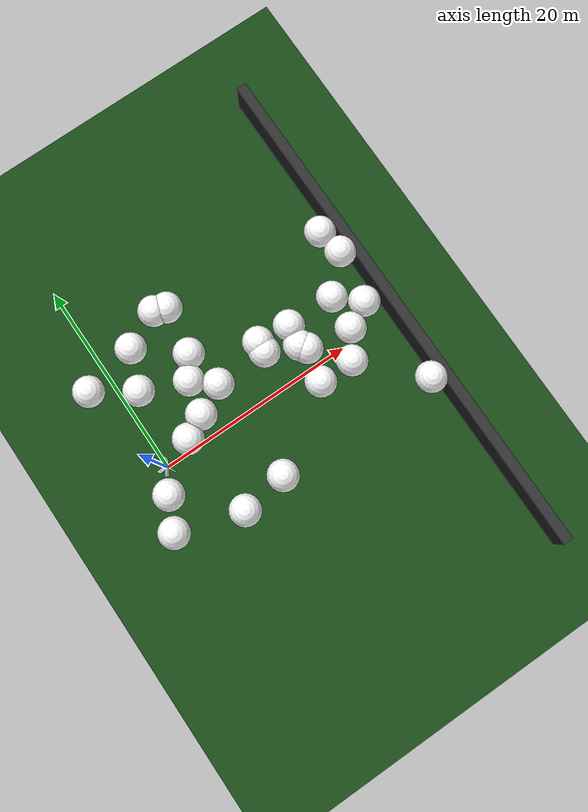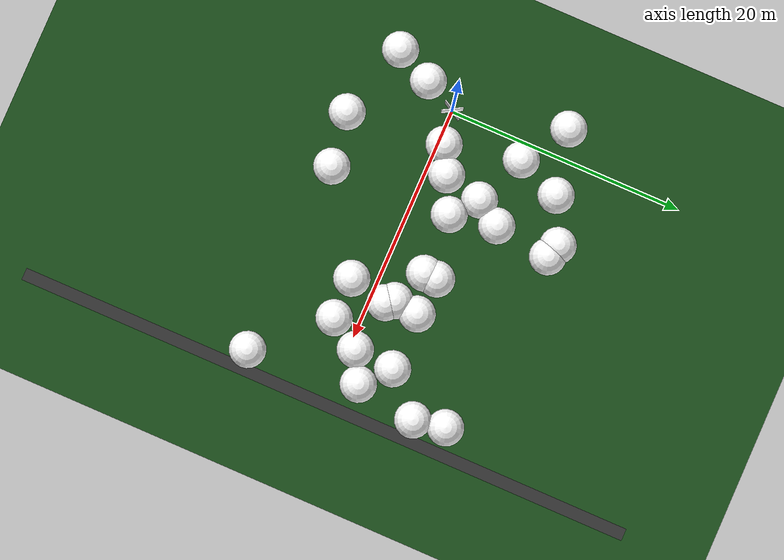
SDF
<sdf version="1.8">
 <world name="forest_world">
  <model name="fire_5">
   <pose>0.00 0.00 1.00 0 0 0.00</pose>
   <static>true</static>
   <link name="fire_link">
    <visual name="fire_5_fire_main_0">
     <geometry><box><size>1.80 0.10 2.00</size></box></geometry>
     <material>
      <ambient>0.7 0.35 0.0 1</ambient>
      <diffuse>1 1 1 1</diffuse>
      <specular>0 0 0 1</specular>
      <emissive>0 0 0 1</emissive>
      <pbr>
       <metal><albedo_map>textures/fire.png</albedo_map><metalness>0.0</metalness><roughness>0.6</roughness></metal>
      </pbr>
     </material>
     <transparency>0.0</transparency>
     <cast_shadows>false</cast_shadows>
    </visual>
    <visual name="fire_5_fire_60_1">
     <pose>0.00 0.00 0.10 0 0 1.05</pose>
     <geometry><box><size>1.80 0.10 2.00</size></box></geometry>
     <material>
      <ambient>0.7 0.35 0.0 1</ambient>
      <diffuse>1 1 1 1</diffuse>
      <specular>0 0 0 1</specular>
      <emissive>0 0 0 1</emissive>
      <pbr>
       <metal><albedo_map>textures/fire.png</albedo_map><metalness>0.0</metalness><roughness>0.6</roughness></metal>
      </pbr>
     </material>
     <transparency>0.0</transparency>
     <cast_shadows>false</cast_shadows>
    </visual>
    <visual name="fire_5_fire_120_2">
     <pose>0.00 0.00 0.20 0 0 2.09</pose>
     <geometry><box><size>1.80 0.10 2.00</size></box></geometry>
     <material>
      <ambient>0.7 0.35 0.0 1</ambient>
      <diffuse>1 1 1 1</diffuse>
      <specular>0 0 0 1</specular>
      <emissive>0 0 0 1</emissive>
      <pbr>
       <metal><albedo_map>textures/fire.png</albedo_map><metalness>0.0</metalness><roughness>0.6</roughness></metal>
      </pbr>
     </material>
     <transparency>0.0</transparency>
     <cast_shadows>false</cast_shadows>
    </visual>
    <light type="point" name="fire_5_light_0">
     <pose>0.40 0.00 0.50 0 0 0</pose>
     <diffuse>1.0 0.7 0.3 1</diffuse>
     <specular>1.0 0.8 0.3 1</specular>
     <intensity>2</intensity>
     <attenuation>
      <range>2</range>
      <constant>0.1</constant>
      <linear>0.05</linear>
      <quadratic>0.02</quadratic>
     </attenuation>
     <cast_shadows>false</cast_shadows>
    </light>
    <light type="point" name="fire_5_light_1">
     <pose>-0.20 0.35 0.50 0 0 0</pose>
     <diffuse>1.0 0.7 0.3 1</diffuse>
     <specular>1.0 0.8 0.3 1</specular>
     <intensity>2</intensity>
     <attenuation>
      <range>2</range>
      <constant>0.1</constant>
      <linear>0.05</linear>
      <quadratic>0.02</quadratic>
     </attenuation>
     <cast_shadows>false</cast_shadows>
    </light>
    <light type="point" name="fire_5_light_2">
     <pose>-0.20 -0.35 0.50 0 0 0</pose>
     <diffuse>1.0 0.7 0.3 1</diffuse>
     <specular>1.0 0.8 0.3 1</specular>
     <intensity>2</intensity>
     <attenuation>
      <range>2</range>
      <constant>0.1</constant>
      <linear>0.05</linear>
      <quadratic>0.02</quadratic>
     </attenuation>
     <cast_shadows>false</cast_shadows>
    </light>
   </link>
   <plugin filename="libignition-gazebo-pose-publisher-system.so" name="ignition::gazebo::systems::PosePublisher">
    <frame_id>world</frame_id>
    <publish_link_pose>true</publish_link_pose>
    <use_pose_vector_msg>true</use_pose_vector_msg>
    <static_publisher>true</static_publisher>
    <static_update_frequency>1</static_update_frequency>
   </plugin>
  </model>
  <model name="tree_simple495">
   <static>1</static>
   <link name="link">
    <pose>0 0 0.1 0 -0 0</pose>
    <collision name="collision_trunk">
     <pose>0 0 2 0 -0 0</pose>
     <geometry><cylinder><radius>0.25</radius><length>4</length></cylinder></geometry>
    </collision>
    <collision name="collision_treetop">
     <pose>0 0 5.2 0 -0 0</pose>
     <geometry><sphere><radius>1.5</radius></sphere></geometry>
    </collision>
    <visual name="trunk">
     <pose>0 0 2 0 -0 0</pose>
     <geometry><cylinder><radius>0.25</radius><length>4</length></cylinder></geometry>
     <material>
      <ambient>0.5 0.5 0.5 1</ambient>
      <diffuse>1.0 1.0 1.0 1</diffuse>
      <specular>0.0 0.0 0.0 1</specular>
      <pbr>
       <metal>
        <albedo_map>../worlds/textures/tree_simple_trunk.jpg</albedo_map>
        <metalness>0.0</metalness>
        <roughness>0.8</roughness>
       </metal>
      </pbr>
     </material>
    </visual>
    <visual name="treetop">
     <pose>0 0 5.2 0 -0 0</pose>
     <geometry><sphere><radius>1.5</radius></sphere></geometry>
     <material>
      <ambient>0.5 0.5 0.5 1</ambient>
      <diffuse>1.0 1.0 1.0 1</diffuse>
      <specular>0.0 0.0 0.0 1</specular>
      <pbr>
       <metal>
        <albedo_map>../worlds/textures/tree_simple_treetop.jpg</albedo_map>
        <metalness>0.0</metalness>
        <roughness>0.9</roughness>
       </metal>
      </pbr>
     </material>
    </visual>
   </link>
   <pose>13.2663357304 3.23501246435 0 0 -0 0</pose>
  </model>
  <model name="tree_simple486">
   <static>1</static>
   <link name="link">
    <pose>0 0 0.1 0 -0 0</pose>
    <collision name="collision_trunk">
     <pose>0 0 2 0 -0 0</pose>
     <geometry><cylinder><radius>0.25</radius><length>4</length></cylinder></geometry>
    </collision>
    <collision name="collision_treetop">
     <pose>0 0 5.2 0 -0 0</pose>
     <geometry><sphere><radius>1.5</radius></sphere></geometry>
    </collision>
    <visual name="trunk">
     <pose>0 0 2 0 -0 0</pose>
     <geometry><cylinder><radius>0.25</radius><length>4</length></cylinder></geometry>
     <material>
      <ambient>0.5 0.5 0.5 1</ambient>
      <diffuse>1.0 1.0 1.0 1</diffuse>
      <specular>0.0 0.0 0.0 1</specular>
      <pbr>
       <metal>
        <albedo_map>../worlds/textures/tree_simple_trunk.jpg</albedo_map>
        <metalness>0.0</metalness>
        <roughness>0.8</roughness>
       </metal>
      </pbr>
     </material>
    </visual>
    <visual name="treetop">
     <pose>0 0 5.2 0 -0 0</pose>
     <geometry><sphere><radius>1.5</radius></sphere></geometry>
     <material>
      <ambient>0.5 0.5 0.5 1</ambient>
      <diffuse>1.0 1.0 1.0 1</diffuse>
      <specular>0.0 0.0 0.0 1</specular>
      <pbr>
       <metal>
        <albedo_map>../worlds/textures/tree_simple_treetop.jpg</albedo_map>
        <metalness>0.0</metalness>
        <roughness>0.9</roughness>
       </metal>
      </pbr>
     </material>
    </visual>
   </link>
   <pose>8.18281559396 11.6524151823 0 0 -0 0</pose>
  </model>
  <model name="tree_simple432">
   <static>1</static>
   <link name="link">
    <pose>0 0 0.1 0 -0 0</pose>
    <collision name="collision_trunk">
     <pose>0 0 2 0 -0 0</pose>
     <geometry><cylinder><radius>0.25</radius><length>4</length></cylinder></geometry>
    </collision>
    <collision name="collision_treetop">
     <pose>0 0 5.2 0 -0 0</pose>
     <geometry><sphere><radius>1.5</radius></sphere></geometry>
    </collision>
    <visual name="trunk">
     <pose>0 0 2 0 -0 0</pose>
     <geometry><cylinder><radius>0.25</radius><length>4</length></cylinder></geometry>
     <material>
      <ambient>0.5 0.5 0.5 1</ambient>
      <diffuse>1.0 1.0 1.0 1</diffuse>
      <specular>0.0 0.0 0.0 1</specular>
      <pbr>
       <metal>
        <albedo_map>../worlds/textures/tree_simple_trunk.jpg</albedo_map>
        <metalness>0.0</metalness>
        <roughness>0.8</roughness>
       </metal>
      </pbr>
     </material>
    </visual>
    <visual name="treetop">
     <pose>0 0 5.2 0 -0 0</pose>
     <geometry><sphere><radius>1.5</radius></sphere></geometry>
     <material>
      <ambient>0.5 0.5 0.5 1</ambient>
      <diffuse>1.0 1.0 1.0 1</diffuse>
      <specular>0.0 0.0 0.0 1</specular>
      <pbr>
       <metal>
        <albedo_map>../worlds/textures/tree_simple_treetop.jpg</albedo_map>
        <metalness>0.0</metalness>
        <roughness>0.9</roughness>
       </metal>
      </pbr>
     </material>
    </visual>
   </link>
   <pose>8.39657738542 -6.88848549894 0 0 -0 0</pose>
  </model>
  <model name="tree_simple431">
   <static>1</static>
   <link name="link">
    <pose>0 0 0.1 0 -0 0</pose>
    <collision name="collision_trunk">
     <pose>0 0 2 0 -0 0</pose>
     <geometry><cylinder><radius>0.25</radius><length>4</length></cylinder></geometry>
    </collision>
    <collision name="collision_treetop">
     <pose>0 0 5.2 0 -0 0</pose>
     <geometry><sphere><radius>1.5</radius></sphere></geometry>
    </collision>
    <visual name="trunk">
     <pose>0 0 2 0 -0 0</pose>
     <geometry><cylinder><radius>0.25</radius><length>4</length></cylinder></geometry>
     <material>
      <ambient>0.5 0.5 0.5 1</ambient>
      <diffuse>1.0 1.0 1.0 1</diffuse>
      <specular>0.0 0.0 0.0 1</specular>
      <pbr>
       <metal>
        <albedo_map>../worlds/textures/tree_simple_trunk.jpg</albedo_map>
        <metalness>0.0</metalness>
        <roughness>0.8</roughness>
       </metal>
      </pbr>
     </material>
    </visual>
    <visual name="treetop">
     <pose>0 0 5.2 0 -0 0</pose>
     <geometry><sphere><radius>1.5</radius></sphere></geometry>
     <material>
      <ambient>0.5 0.5 0.5 1</ambient>
      <diffuse>1.0 1.0 1.0 1</diffuse>
      <specular>0.0 0.0 0.0 1</specular>
      <pbr>
       <metal>
        <albedo_map>../worlds/textures/tree_simple_treetop.jpg</albedo_map>
        <metalness>0.0</metalness>
        <roughness>0.9</roughness>
       </metal>
      </pbr>
     </material>
    </visual>
   </link>
   <pose>21.2091972338 3.93897030512 0 0 -0 0</pose>
  </model>
  <model name="tree_simple421">
   <static>1</static>
   <link name="link">
    <pose>0 0 0.1 0 -0 0</pose>
    <collision name="collision_trunk">
     <pose>0 0 2 0 -0 0</pose>
     <geometry><cylinder><radius>0.25</radius><length>4</length></cylinder></geometry>
    </collision>
    <collision name="collision_treetop">
     <pose>0 0 5.2 0 -0 0</pose>
     <geometry><sphere><radius>1.5</radius></sphere></geometry>
    </collision>
    <visual name="trunk">
     <pose>0 0 2 0 -0 0</pose>
     <geometry><cylinder><radius>0.25</radius><length>4</length></cylinder></geometry>
     <material>
      <ambient>0.5 0.5 0.5 1</ambient>
      <diffuse>1.0 1.0 1.0 1</diffuse>
      <specular>0.0 0.0 0.0 1</specular>
      <pbr>
       <metal>
        <albedo_map>../worlds/textures/tree_simple_trunk.jpg</albedo_map>
        <metalness>0.0</metalness>
        <roughness>0.8</roughness>
       </metal>
      </pbr>
     </material>
    </visual>
    <visual name="treetop">
     <pose>0 0 5.2 0 -0 0</pose>
     <geometry><sphere><radius>1.5</radius></sphere></geometry>
     <material>
      <ambient>0.5 0.5 0.5 1</ambient>
      <diffuse>1.0 1.0 1.0 1</diffuse>
      <specular>0.0 0.0 0.0 1</specular>
      <pbr>
       <metal>
        <albedo_map>../worlds/textures/tree_simple_treetop.jpg</albedo_map>
        <metalness>0.0</metalness>
        <roughness>0.9</roughness>
       </metal>
      </pbr>
     </material>
    </visual>
   </link>
   <pose>7.02492588621 12.0559728025 0 0 -0 0</pose>
  </model>
  <model name="tree_simple417">
   <static>1</static>
   <link name="link">
    <pose>0 0 0.1 0 -0 0</pose>
    <collision name="collision_trunk">
     <pose>0 0 2 0 -0 0</pose>
     <geometry><cylinder><radius>0.25</radius><length>4</length></cylinder></geometry>
    </collision>
    <collision name="collision_treetop">
     <pose>0 0 5.2 0 -0 0</pose>
     <geometry><sphere><radius>1.5</radius></sphere></geometry>
    </collision>
    <visual name="trunk">
     <pose>0 0 2 0 -0 0</pose>
     <geometry><cylinder><radius>0.25</radius><length>4</length></cylinder></geometry>
     <material>
      <ambient>0.5 0.5 0.5 1</ambient>
      <diffuse>1.0 1.0 1.0 1</diffuse>
      <specular>0.0 0.0 0.0 1</specular>
      <pbr>
       <metal>
        <albedo_map>../worlds/textures/tree_simple_trunk.jpg</albedo_map>
        <metalness>0.0</metalness>
        <roughness>0.8</roughness>
       </metal>
      </pbr>
     </material>
    </visual>
    <visual name="treetop">
     <pose>0 0 5.2 0 -0 0</pose>
     <geometry><sphere><radius>1.5</radius></sphere></geometry>
     <material>
      <ambient>0.5 0.5 0.5 1</ambient>
      <diffuse>1.0 1.0 1.0 1</diffuse>
      <specular>0.0 0.0 0.0 1</specular>
      <pbr>
       <metal>
        <albedo_map>../worlds/textures/tree_simple_treetop.jpg</albedo_map>
        <metalness>0.0</metalness>
        <roughness>0.9</roughness>
       </metal>
      </pbr>
     </material>
    </visual>
   </link>
   <pose>-1.82310579314 9.17527441854 0 0 -0 0</pose>
  </model>
  <model name="tree_simple412">
   <static>1</static>
   <link name="link">
    <pose>0 0 0.1 0 -0 0</pose>
    <collision name="collision_trunk">
     <pose>0 0 2 0 -0 0</pose>
     <geometry><cylinder><radius>0.25</radius><length>4</length></cylinder></geometry>
    </collision>
    <collision name="collision_treetop">
     <pose>0 0 5.2 0 -0 0</pose>
     <geometry><sphere><radius>1.5</radius></sphere></geometry>
    </collision>
    <visual name="trunk">
     <pose>0 0 2 0 -0 0</pose>
     <geometry><cylinder><radius>0.25</radius><length>4</length></cylinder></geometry>
     <material>
      <ambient>0.5 0.5 0.5 1</ambient>
      <diffuse>1.0 1.0 1.0 1</diffuse>
      <specular>0.0 0.0 0.0 1</specular>
      <pbr>
       <metal>
        <albedo_map>../worlds/textures/tree_simple_trunk.jpg</albedo_map>
        <metalness>0.0</metalness>
        <roughness>0.8</roughness>
       </metal>
      </pbr>
     </material>
    </visual>
    <visual name="treetop">
     <pose>0 0 5.2 0 -0 0</pose>
     <geometry><sphere><radius>1.5</radius></sphere></geometry>
     <material>
      <ambient>0.5 0.5 0.5 1</ambient>
      <diffuse>1.0 1.0 1.0 1</diffuse>
      <specular>0.0 0.0 0.0 1</specular>
      <pbr>
       <metal>
        <albedo_map>../worlds/textures/tree_simple_treetop.jpg</albedo_map>
        <metalness>0.0</metalness>
        <roughness>0.9</roughness>
       </metal>
      </pbr>
     </material>
    </visual>
   </link>
   <pose>1.94235434688 6.68973059551 0 0 -0 0</pose>
  </model>
  <model name="tree_simple350">
   <static>1</static>
   <link name="link">
    <pose>0 0 0.1 0 -0 0</pose>
    <collision name="collision_trunk">
     <pose>0 0 2 0 -0 0</pose>
     <geometry><cylinder><radius>0.25</radius><length>4</length></cylinder></geometry>
    </collision>
    <collision name="collision_treetop">
     <pose>0 0 5.2 0 -0 0</pose>
     <geometry><sphere><radius>1.5</radius></sphere></geometry>
    </collision>
    <visual name="trunk">
     <pose>0 0 2 0 -0 0</pose>
     <geometry><cylinder><radius>0.25</radius><length>4</length></cylinder></geometry>
     <material>
      <ambient>0.5 0.5 0.5 1</ambient>
      <diffuse>1.0 1.0 1.0 1</diffuse>
      <specular>0.0 0.0 0.0 1</specular>
      <pbr>
       <metal>
        <albedo_map>../worlds/textures/tree_simple_trunk.jpg</albedo_map>
        <metalness>0.0</metalness>
        <roughness>0.8</roughness>
       </metal>
      </pbr>
     </material>
    </visual>
    <visual name="treetop">
     <pose>0 0 5.2 0 -0 0</pose>
     <geometry><sphere><radius>1.5</radius></sphere></geometry>
     <material>
      <ambient>0.5 0.5 0.5 1</ambient>
      <diffuse>1.0 1.0 1.0 1</diffuse>
      <specular>0.0 0.0 0.0 1</specular>
      <pbr>
       <metal>
        <albedo_map>../worlds/textures/tree_simple_treetop.jpg</albedo_map>
        <metalness>0.0</metalness>
        <roughness>0.9</roughness>
       </metal>
      </pbr>
     </material>
    </visual>
   </link>
   <pose>5.40258361507 1.7380066323 0 0 -0 0</pose>
  </model>
  <model name="tree_simple346">
   <static>1</static>
   <link name="link">
    <pose>0 0 0.1 0 -0 0</pose>
    <collision name="collision_trunk">
     <pose>0 0 2 0 -0 0</pose>
     <geometry><cylinder><radius>0.25</radius><length>4</length></cylinder></geometry>
    </collision>
    <collision name="collision_treetop">
     <pose>0 0 5.2 0 -0 0</pose>
     <geometry><sphere><radius>1.5</radius></sphere></geometry>
    </collision>
    <visual name="trunk">
     <pose>0 0 2 0 -0 0</pose>
     <geometry><cylinder><radius>0.25</radius><length>4</length></cylinder></geometry>
     <material>
      <ambient>0.5 0.5 0.5 1</ambient>
      <diffuse>1.0 1.0 1.0 1</diffuse>
      <specular>0.0 0.0 0.0 1</specular>
      <pbr>
       <metal>
        <albedo_map>../worlds/textures/tree_simple_trunk.jpg</albedo_map>
        <metalness>0.0</metalness>
        <roughness>0.8</roughness>
       </metal>
      </pbr>
     </material>
    </visual>
    <visual name="treetop">
     <pose>0 0 5.2 0 -0 0</pose>
     <geometry><sphere><radius>1.5</radius></sphere></geometry>
     <material>
      <ambient>0.5 0.5 0.5 1</ambient>
      <diffuse>1.0 1.0 1.0 1</diffuse>
      <specular>0.0 0.0 0.0 1</specular>
      <pbr>
       <metal>
        <albedo_map>../worlds/textures/tree_simple_treetop.jpg</albedo_map>
        <metalness>0.0</metalness>
        <roughness>0.9</roughness>
       </metal>
      </pbr>
     </material>
    </visual>
   </link>
   <pose>6.18558583868 4.91340003373 0 0 -0 0</pose>
  </model>
  <model name="tree_simple316">
   <static>1</static>
   <link name="link">
    <pose>0 0 0.1 0 -0 0</pose>
    <collision name="collision_trunk">
     <pose>0 0 2 0 -0 0</pose>
     <geometry><cylinder><radius>0.25</radius><length>4</length></cylinder></geometry>
    </collision>
    <collision name="collision_treetop">
     <pose>0 0 5.2 0 -0 0</pose>
     <geometry><sphere><radius>1.5</radius></sphere></geometry>
    </collision>
    <visual name="trunk">
     <pose>0 0 2 0 -0 0</pose>
     <geometry><cylinder><radius>0.25</radius><length>4</length></cylinder></geometry>
     <material>
      <ambient>0.5 0.5 0.5 1</ambient>
      <diffuse>1.0 1.0 1.0 1</diffuse>
      <specular>0.0 0.0 0.0 1</specular>
      <pbr>
       <metal>
        <albedo_map>../worlds/textures/tree_simple_trunk.jpg</albedo_map>
        <metalness>0.0</metalness>
        <roughness>0.8</roughness>
       </metal>
      </pbr>
     </material>
    </visual>
    <visual name="treetop">
     <pose>0 0 5.2 0 -0 0</pose>
     <geometry><sphere><radius>1.5</radius></sphere></geometry>
     <material>
      <ambient>0.5 0.5 0.5 1</ambient>
      <diffuse>1.0 1.0 1.0 1</diffuse>
      <specular>0.0 0.0 0.0 1</specular>
      <pbr>
       <metal>
        <albedo_map>../worlds/textures/tree_simple_treetop.jpg</albedo_map>
        <metalness>0.0</metalness>
        <roughness>0.9</roughness>
       </metal>
      </pbr>
     </material>
    </visual>
   </link>
   <pose>19.3529599153 -1.91242662106 0 0 -0 0</pose>
  </model>
  <model name="tree_simple315">
   <static>1</static>
   <link name="link">
    <pose>0 0 0.1 0 -0 0</pose>
    <collision name="collision_trunk">
     <pose>0 0 2 0 -0 0</pose>
     <geometry><cylinder><radius>0.25</radius><length>4</length></cylinder></geometry>
    </collision>
    <collision name="collision_treetop">
     <pose>0 0 5.2 0 -0 0</pose>
     <geometry><sphere><radius>1.5</radius></sphere></geometry>
    </collision>
    <visual name="trunk">
     <pose>0 0 2 0 -0 0</pose>
     <geometry><cylinder><radius>0.25</radius><length>4</length></cylinder></geometry>
     <material>
      <ambient>0.5 0.5 0.5 1</ambient>
      <diffuse>1.0 1.0 1.0 1</diffuse>
      <specular>0.0 0.0 0.0 1</specular>
      <pbr>
       <metal>
        <albedo_map>../worlds/textures/tree_simple_trunk.jpg</albedo_map>
        <metalness>0.0</metalness>
        <roughness>0.8</roughness>
       </metal>
      </pbr>
     </material>
    </visual>
    <visual name="treetop">
     <pose>0 0 5.2 0 -0 0</pose>
     <geometry><sphere><radius>1.5</radius></sphere></geometry>
     <material>
      <ambient>0.5 0.5 0.5 1</ambient>
      <diffuse>1.0 1.0 1.0 1</diffuse>
      <specular>0.0 0.0 0.0 1</specular>
      <pbr>
       <metal>
        <albedo_map>../worlds/textures/tree_simple_treetop.jpg</albedo_map>
        <metalness>0.0</metalness>
        <roughness>0.9</roughness>
       </metal>
      </pbr>
     </material>
    </visual>
   </link>
   <pose>20.9855205965 0.626463942169 0 0 -0 0</pose>
  </model>
  <model name="tree_simple314">
   <static>1</static>
   <link name="link">
    <pose>0 0 0.1 0 -0 0</pose>
    <collision name="collision_trunk">
     <pose>0 0 2 0 -0 0</pose>
     <geometry><cylinder><radius>0.25</radius><length>4</length></cylinder></geometry>
    </collision>
    <collision name="collision_treetop">
     <pose>0 0 5.2 0 -0 0</pose>
     <geometry><sphere><radius>1.5</radius></sphere></geometry>
    </collision>
    <visual name="trunk">
     <pose>0 0 2 0 -0 0</pose>
     <geometry><cylinder><radius>0.25</radius><length>4</length></cylinder></geometry>
     <material>
      <ambient>0.5 0.5 0.5 1</ambient>
      <diffuse>1.0 1.0 1.0 1</diffuse>
      <specular>0.0 0.0 0.0 1</specular>
      <pbr>
       <metal>
        <albedo_map>../worlds/textures/tree_simple_trunk.jpg</albedo_map>
        <metalness>0.0</metalness>
        <roughness>0.8</roughness>
       </metal>
      </pbr>
     </material>
    </visual>
    <visual name="treetop">
     <pose>0 0 5.2 0 -0 0</pose>
     <geometry><sphere><radius>1.5</radius></sphere></geometry>
     <material>
      <ambient>0.5 0.5 0.5 1</ambient>
      <diffuse>1.0 1.0 1.0 1</diffuse>
      <specular>0.0 0.0 0.0 1</specular>
      <pbr>
       <metal>
        <albedo_map>../worlds/textures/tree_simple_treetop.jpg</albedo_map>
        <metalness>0.0</metalness>
        <roughness>0.9</roughness>
       </metal>
      </pbr>
     </material>
    </visual>
   </link>
   <pose>15.9305866253 -1.88175491407 0 0 -0 0</pose>
  </model>
  <model name="tree_simple308">
   <static>1</static>
   <link name="link">
    <pose>0 0 0.1 0 -0 0</pose>
    <collision name="collision_trunk">
     <pose>0 0 2 0 -0 0</pose>
     <geometry><cylinder><radius>0.25</radius><length>4</length></cylinder></geometry>
    </collision>
    <collision name="collision_treetop">
     <pose>0 0 5.2 0 -0 0</pose>
     <geometry><sphere><radius>1.5</radius></sphere></geometry>
    </collision>
    <visual name="trunk">
     <pose>0 0 2 0 -0 0</pose>
     <geometry><cylinder><radius>0.25</radius><length>4</length></cylinder></geometry>
     <material>
      <ambient>0.5 0.5 0.5 1</ambient>
      <diffuse>1.0 1.0 1.0 1</diffuse>
      <specular>0.0 0.0 0.0 1</specular>
      <pbr>
       <metal>
        <albedo_map>../worlds/textures/tree_simple_trunk.jpg</albedo_map>
        <metalness>0.0</metalness>
        <roughness>0.8</roughness>
       </metal>
      </pbr>
     </material>
    </visual>
    <visual name="treetop">
     <pose>0 0 5.2 0 -0 0</pose>
     <geometry><sphere><radius>1.5</radius></sphere></geometry>
     <material>
      <ambient>0.5 0.5 0.5 1</ambient>
      <diffuse>1.0 1.0 1.0 1</diffuse>
      <specular>0.0 0.0 0.0 1</specular>
      <pbr>
       <metal>
        <albedo_map>../worlds/textures/tree_simple_treetop.jpg</albedo_map>
        <metalness>0.0</metalness>
        <roughness>0.9</roughness>
       </metal>
      </pbr>
     </material>
    </visual>
   </link>
   <pose>3.23733276298 0.582978933188 0 0 -0 0</pose>
  </model>
  <model name="tree_simple293">
   <static>1</static>
   <link name="link">
    <pose>0 0 0.1 0 -0 0</pose>
    <collision name="collision_trunk">
     <pose>0 0 2 0 -0 0</pose>
     <geometry><cylinder><radius>0.25</radius><length>4</length></cylinder></geometry>
    </collision>
    <collision name="collision_treetop">
     <pose>0 0 5.2 0 -0 0</pose>
     <geometry><sphere><radius>1.5</radius></sphere></geometry>
    </collision>
    <visual name="trunk">
     <pose>0 0 2 0 -0 0</pose>
     <geometry><cylinder><radius>0.25</radius><length>4</length></cylinder></geometry>
     <material>
      <ambient>0.5 0.5 0.5 1</ambient>
      <diffuse>1.0 1.0 1.0 1</diffuse>
      <specular>0.0 0.0 0.0 1</specular>
      <pbr>
       <metal>
        <albedo_map>../worlds/textures/tree_simple_trunk.jpg</albedo_map>
        <metalness>0.0</metalness>
        <roughness>0.8</roughness>
       </metal>
      </pbr>
     </material>
    </visual>
    <visual name="treetop">
     <pose>0 0 5.2 0 -0 0</pose>
     <geometry><sphere><radius>1.5</radius></sphere></geometry>
     <material>
      <ambient>0.5 0.5 0.5 1</ambient>
      <diffuse>1.0 1.0 1.0 1</diffuse>
      <specular>0.0 0.0 0.0 1</specular>
      <pbr>
       <metal>
        <albedo_map>../worlds/textures/tree_simple_treetop.jpg</albedo_map>
        <metalness>0.0</metalness>
        <roughness>0.9</roughness>
       </metal>
      </pbr>
     </material>
    </visual>
   </link>
   <pose>23.4063524119 1.93979754522 0 0 -0 0</pose>
  </model>
  <model name="tree_simple269">
   <static>1</static>
   <link name="link">
    <pose>0 0 0.1 0 -0 0</pose>
    <collision name="collision_trunk">
     <pose>0 0 2 0 -0 0</pose>
     <geometry><cylinder><radius>0.25</radius><length>4</length></cylinder></geometry>
    </collision>
    <collision name="collision_treetop">
     <pose>0 0 5.2 0 -0 0</pose>
     <geometry><sphere><radius>1.5</radius></sphere></geometry>
    </collision>
    <visual name="trunk">
     <pose>0 0 2 0 -0 0</pose>
     <geometry><cylinder><radius>0.25</radius><length>4</length></cylinder></geometry>
     <material>
      <ambient>0.5 0.5 0.5 1</ambient>
      <diffuse>1.0 1.0 1.0 1</diffuse>
      <specular>0.0 0.0 0.0 1</specular>
      <pbr>
       <metal>
        <albedo_map>../worlds/textures/tree_simple_trunk.jpg</albedo_map>
        <metalness>0.0</metalness>
        <roughness>0.8</roughness>
       </metal>
      </pbr>
     </material>
    </visual>
    <visual name="treetop">
     <pose>0 0 5.2 0 -0 0</pose>
     <geometry><sphere><radius>1.5</radius></sphere></geometry>
     <material>
      <ambient>0.5 0.5 0.5 1</ambient>
      <diffuse>1.0 1.0 1.0 1</diffuse>
      <specular>0.0 0.0 0.0 1</specular>
      <pbr>
       <metal>
        <albedo_map>../worlds/textures/tree_simple_treetop.jpg</albedo_map>
        <metalness>0.0</metalness>
        <roughness>0.9</roughness>
       </metal>
      </pbr>
     </material>
    </visual>
   </link>
   <pose>3.4316618278 10.3418603378 0 0 -0 0</pose>
  </model>
  <model name="tree_simple242">
   <static>1</static>
   <link name="link">
    <pose>0 0 0.1 0 -0 0</pose>
    <collision name="collision_trunk">
     <pose>0 0 2 0 -0 0</pose>
     <geometry><cylinder><radius>0.25</radius><length>4</length></cylinder></geometry>
    </collision>
    <collision name="collision_treetop">
     <pose>0 0 5.2 0 -0 0</pose>
     <geometry><sphere><radius>1.5</radius></sphere></geometry>
    </collision>
    <visual name="trunk">
     <pose>0 0 2 0 -0 0</pose>
     <geometry><cylinder><radius>0.25</radius><length>4</length></cylinder></geometry>
     <material>
      <ambient>0.5 0.5 0.5 1</ambient>
      <diffuse>1.0 1.0 1.0 1</diffuse>
      <specular>0.0 0.0 0.0 1</specular>
      <pbr>
       <metal>
        <albedo_map>../worlds/textures/tree_simple_trunk.jpg</albedo_map>
        <metalness>0.0</metalness>
        <roughness>0.8</roughness>
       </metal>
      </pbr>
     </material>
    </visual>
    <visual name="treetop">
     <pose>0 0 5.2 0 -0 0</pose>
     <geometry><sphere><radius>1.5</radius></sphere></geometry>
     <material>
      <ambient>0.5 0.5 0.5 1</ambient>
      <diffuse>1.0 1.0 1.0 1</diffuse>
      <specular>0.0 0.0 0.0 1</specular>
      <pbr>
       <metal>
        <albedo_map>../worlds/textures/tree_simple_treetop.jpg</albedo_map>
        <metalness>0.0</metalness>
        <roughness>0.9</roughness>
       </metal>
      </pbr>
     </material>
    </visual>
   </link>
   <pose>23.8093795921 9.61974989159 0 0 -0 0</pose>
  </model>
  <model name="tree_simple222">
   <static>1</static>
   <link name="link">
    <pose>0 0 0.1 0 -0 0</pose>
    <collision name="collision_trunk">
     <pose>0 0 2 0 -0 0</pose>
     <geometry><cylinder><radius>0.25</radius><length>4</length></cylinder></geometry>
    </collision>
    <collision name="collision_treetop">
     <pose>0 0 5.2 0 -0 0</pose>
     <geometry><sphere><radius>1.5</radius></sphere></geometry>
    </collision>
    <visual name="trunk">
     <pose>0 0 2 0 -0 0</pose>
     <geometry><cylinder><radius>0.25</radius><length>4</length></cylinder></geometry>
     <material>
      <ambient>0.5 0.5 0.5 1</ambient>
      <diffuse>1.0 1.0 1.0 1</diffuse>
      <specular>0.0 0.0 0.0 1</specular>
      <pbr>
       <metal>
        <albedo_map>../worlds/textures/tree_simple_trunk.jpg</albedo_map>
        <metalness>0.0</metalness>
        <roughness>0.8</roughness>
       </metal>
      </pbr>
     </material>
    </visual>
    <visual name="treetop">
     <pose>0 0 5.2 0 -0 0</pose>
     <geometry><sphere><radius>1.5</radius></sphere></geometry>
     <material>
      <ambient>0.5 0.5 0.5 1</ambient>
      <diffuse>1.0 1.0 1.0 1</diffuse>
      <specular>0.0 0.0 0.0 1</specular>
      <pbr>
       <metal>
        <albedo_map>../worlds/textures/tree_simple_treetop.jpg</albedo_map>
        <metalness>0.0</metalness>
        <roughness>0.9</roughness>
       </metal>
      </pbr>
     </material>
    </visual>
   </link>
   <pose>3.92504774623 -7.51224141252 0 0 -0 0</pose>
  </model>
  <model name="tree_simple214">
   <static>1</static>
   <link name="link">
    <pose>0 0 0.1 0 -0 0</pose>
    <collision name="collision_trunk">
     <pose>0 0 2 0 -0 0</pose>
     <geometry><cylinder><radius>0.25</radius><length>4</length></cylinder></geometry>
    </collision>
    <collision name="collision_treetop">
     <pose>0 0 5.2 0 -0 0</pose>
     <geometry><sphere><radius>1.5</radius></sphere></geometry>
    </collision>
    <visual name="trunk">
     <pose>0 0 2 0 -0 0</pose>
     <geometry><cylinder><radius>0.25</radius><length>4</length></cylinder></geometry>
     <material>
      <ambient>0.5 0.5 0.5 1</ambient>
      <diffuse>1.0 1.0 1.0 1</diffuse>
      <specular>0.0 0.0 0.0 1</specular>
      <pbr>
       <metal>
        <albedo_map>../worlds/textures/tree_simple_trunk.jpg</albedo_map>
        <metalness>0.0</metalness>
        <roughness>0.8</roughness>
       </metal>
      </pbr>
     </material>
    </visual>
    <visual name="treetop">
     <pose>0 0 5.2 0 -0 0</pose>
     <geometry><sphere><radius>1.5</radius></sphere></geometry>
     <material>
      <ambient>0.5 0.5 0.5 1</ambient>
      <diffuse>1.0 1.0 1.0 1</diffuse>
      <specular>0.0 0.0 0.0 1</specular>
      <pbr>
       <metal>
        <albedo_map>../worlds/textures/tree_simple_treetop.jpg</albedo_map>
        <metalness>0.0</metalness>
        <roughness>0.9</roughness>
       </metal>
      </pbr>
     </material>
    </visual>
   </link>
   <pose>16.4618787814 3.98227082292 0 0 -0 0</pose>
  </model>
  <model name="tree_simple178">
   <static>1</static>
   <link name="link">
    <pose>0 0 0.1 0 -0 0</pose>
    <collision name="collision_trunk">
     <pose>0 0 2 0 -0 0</pose>
     <geometry><cylinder><radius>0.25</radius><length>4</length></cylinder></geometry>
    </collision>
    <collision name="collision_treetop">
     <pose>0 0 5.2 0 -0 0</pose>
     <geometry><sphere><radius>1.5</radius></sphere></geometry>
    </collision>
    <visual name="trunk">
     <pose>0 0 2 0 -0 0</pose>
     <geometry><cylinder><radius>0.25</radius><length>4</length></cylinder></geometry>
     <material>
      <ambient>0.5 0.5 0.5 1</ambient>
      <diffuse>1.0 1.0 1.0 1</diffuse>
      <specular>0.0 0.0 0.0 1</specular>
      <pbr>
       <metal>
        <albedo_map>../worlds/textures/tree_simple_trunk.jpg</albedo_map>
        <metalness>0.0</metalness>
        <roughness>0.8</roughness>
       </metal>
      </pbr>
     </material>
    </visual>
    <visual name="treetop">
     <pose>0 0 5.2 0 -0 0</pose>
     <geometry><sphere><radius>1.5</radius></sphere></geometry>
     <material>
      <ambient>0.5 0.5 0.5 1</ambient>
      <diffuse>1.0 1.0 1.0 1</diffuse>
      <specular>0.0 0.0 0.0 1</specular>
      <pbr>
       <metal>
        <albedo_map>../worlds/textures/tree_simple_treetop.jpg</albedo_map>
        <metalness>0.0</metalness>
        <roughness>0.9</roughness>
       </metal>
      </pbr>
     </material>
    </visual>
   </link>
   <pose>24.3791750449 -7.18218424398 0 0 -0 0</pose>
  </model>
  <model name="tree_simple145">
   <static>1</static>
   <link name="link">
    <pose>0 0 0.1 0 -0 0</pose>
    <collision name="collision_trunk">
     <pose>0 0 2 0 -0 0</pose>
     <geometry><cylinder><radius>0.25</radius><length>4</length></cylinder></geometry>
    </collision>
    <collision name="collision_treetop">
     <pose>0 0 5.2 0 -0 0</pose>
     <geometry><sphere><radius>1.5</radius></sphere></geometry>
    </collision>
    <visual name="trunk">
     <pose>0 0 2 0 -0 0</pose>
     <geometry><cylinder><radius>0.25</radius><length>4</length></cylinder></geometry>
     <material>
      <ambient>0.5 0.5 0.5 1</ambient>
      <diffuse>1.0 1.0 1.0 1</diffuse>
      <specular>0.0 0.0 0.0 1</specular>
      <pbr>
       <metal>
        <albedo_map>../worlds/textures/tree_simple_trunk.jpg</albedo_map>
        <metalness>0.0</metalness>
        <roughness>0.8</roughness>
       </metal>
      </pbr>
     </material>
    </visual>
    <visual name="treetop">
     <pose>0 0 5.2 0 -0 0</pose>
     <geometry><sphere><radius>1.5</radius></sphere></geometry>
     <material>
      <ambient>0.5 0.5 0.5 1</ambient>
      <diffuse>1.0 1.0 1.0 1</diffuse>
      <specular>0.0 0.0 0.0 1</specular>
      <pbr>
       <metal>
        <albedo_map>../worlds/textures/tree_simple_treetop.jpg</albedo_map>
        <metalness>0.0</metalness>
        <roughness>0.9</roughness>
       </metal>
      </pbr>
     </material>
    </visual>
   </link>
   <pose>7.53257093085 6.9864658102 0 0 -0 0</pose>
  </model>
  <model name="tree_simple106">
   <static>1</static>
   <link name="link">
    <pose>0 0 0.1 0 -0 0</pose>
    <collision name="collision_trunk">
     <pose>0 0 2 0 -0 0</pose>
     <geometry><cylinder><radius>0.25</radius><length>4</length></cylinder></geometry>
    </collision>
    <collision name="collision_treetop">
     <pose>0 0 5.2 0 -0 0</pose>
     <geometry><sphere><radius>1.5</radius></sphere></geometry>
    </collision>
    <visual name="trunk">
     <pose>0 0 2 0 -0 0</pose>
     <geometry><cylinder><radius>0.25</radius><length>4</length></cylinder></geometry>
     <material>
      <ambient>0.5 0.5 0.5 1</ambient>
      <diffuse>1.0 1.0 1.0 1</diffuse>
      <specular>0.0 0.0 0.0 1</specular>
      <pbr>
       <metal>
        <albedo_map>../worlds/textures/tree_simple_trunk.jpg</albedo_map>
        <metalness>0.0</metalness>
        <roughness>0.8</roughness>
       </metal>
      </pbr>
     </material>
    </visual>
    <visual name="treetop">
     <pose>0 0 5.2 0 -0 0</pose>
     <geometry><sphere><radius>1.5</radius></sphere></geometry>
     <material>
      <ambient>0.5 0.5 0.5 1</ambient>
      <diffuse>1.0 1.0 1.0 1</diffuse>
      <specular>0.0 0.0 0.0 1</specular>
      <pbr>
       <metal>
        <albedo_map>../worlds/textures/tree_simple_treetop.jpg</albedo_map>
        <metalness>0.0</metalness>
        <roughness>0.9</roughness>
       </metal>
      </pbr>
     </material>
    </visual>
   </link>
   <pose>-0.906213194622 -2.57618131058 0 0 -0 0</pose>
  </model>
  <model name="tree_simple81">
   <static>1</static>
   <link name="link">
    <pose>0 0 0.1 0 -0 0</pose>
    <collision name="collision_trunk">
     <pose>0 0 2 0 -0 0</pose>
     <geometry><cylinder><radius>0.25</radius><length>4</length></cylinder></geometry>
    </collision>
    <collision name="collision_treetop">
     <pose>0 0 5.2 0 -0 0</pose>
     <geometry><sphere><radius>1.5</radius></sphere></geometry>
    </collision>
    <visual name="trunk">
     <pose>0 0 2 0 -0 0</pose>
     <geometry><cylinder><radius>0.25</radius><length>4</length></cylinder></geometry>
     <material>
      <ambient>0.5 0.5 0.5 1</ambient>
      <diffuse>1.0 1.0 1.0 1</diffuse>
      <specular>0.0 0.0 0.0 1</specular>
      <pbr>
       <metal>
        <albedo_map>../worlds/textures/tree_simple_trunk.jpg</albedo_map>
        <metalness>0.0</metalness>
        <roughness>0.8</roughness>
       </metal>
      </pbr>
     </material>
    </visual>
    <visual name="treetop">
     <pose>0 0 5.2 0 -0 0</pose>
     <geometry><sphere><radius>1.5</radius></sphere></geometry>
     <material>
      <ambient>0.5 0.5 0.5 1</ambient>
      <diffuse>1.0 1.0 1.0 1</diffuse>
      <specular>0.0 0.0 0.0 1</specular>
      <pbr>
       <metal>
        <albedo_map>../worlds/textures/tree_simple_treetop.jpg</albedo_map>
        <metalness>0.0</metalness>
        <roughness>0.9</roughness>
       </metal>
      </pbr>
     </material>
    </visual>
   </link>
   <pose>13.3023094876 4.29219701126 0 0 -0 0</pose>
  </model>
  <model name="tree_simple74">
   <static>1</static>
   <link name="link">
    <pose>0 0 0.1 0 -0 0</pose>
    <collision name="collision_trunk">
     <pose>0 0 2 0 -0 0</pose>
     <geometry><cylinder><radius>0.25</radius><length>4</length></cylinder></geometry>
    </collision>
    <collision name="collision_treetop">
     <pose>0 0 5.2 0 -0 0</pose>
     <geometry><sphere><radius>1.5</radius></sphere></geometry>
    </collision>
    <visual name="trunk">
     <pose>0 0 2 0 -0 0</pose>
     <geometry><cylinder><radius>0.25</radius><length>4</length></cylinder></geometry>
     <material>
      <ambient>0.5 0.5 0.5 1</ambient>
      <diffuse>1.0 1.0 1.0 1</diffuse>
      <specular>0.0 0.0 0.0 1</specular>
      <pbr>
       <metal>
        <albedo_map>../worlds/textures/tree_simple_trunk.jpg</albedo_map>
        <metalness>0.0</metalness>
        <roughness>0.8</roughness>
       </metal>
      </pbr>
     </material>
    </visual>
    <visual name="treetop">
     <pose>0 0 5.2 0 -0 0</pose>
     <geometry><sphere><radius>1.5</radius></sphere></geometry>
     <material>
      <ambient>0.5 0.5 0.5 1</ambient>
      <diffuse>1.0 1.0 1.0 1</diffuse>
      <specular>0.0 0.0 0.0 1</specular>
      <pbr>
       <metal>
        <albedo_map>../worlds/textures/tree_simple_treetop.jpg</albedo_map>
        <metalness>0.0</metalness>
        <roughness>0.9</roughness>
       </metal>
      </pbr>
     </material>
    </visual>
   </link>
   <pose>16.1884917497 1.95365769223 0 0 -0 0</pose>
  </model>
  <model name="tree_simple69">
   <static>1</static>
   <link name="link">
    <pose>0 0 0.1 0 -0 0</pose>
    <collision name="collision_trunk">
     <pose>0 0 2 0 -0 0</pose>
     <geometry><cylinder><radius>0.25</radius><length>4</length></cylinder></geometry>
    </collision>
    <collision name="collision_treetop">
     <pose>0 0 5.2 0 -0 0</pose>
     <geometry><sphere><radius>1.5</radius></sphere></geometry>
    </collision>
    <visual name="trunk">
     <pose>0 0 2 0 -0 0</pose>
     <geometry><cylinder><radius>0.25</radius><length>4</length></cylinder></geometry>
     <material>
      <ambient>0.5 0.5 0.5 1</ambient>
      <diffuse>1.0 1.0 1.0 1</diffuse>
      <specular>0.0 0.0 0.0 1</specular>
      <pbr>
       <metal>
        <albedo_map>../worlds/textures/tree_simple_trunk.jpg</albedo_map>
        <metalness>0.0</metalness>
        <roughness>0.8</roughness>
       </metal>
      </pbr>
     </material>
    </visual>
    <visual name="treetop">
     <pose>0 0 5.2 0 -0 0</pose>
     <geometry><sphere><radius>1.5</radius></sphere></geometry>
     <material>
      <ambient>0.5 0.5 0.5 1</ambient>
      <diffuse>1.0 1.0 1.0 1</diffuse>
      <specular>0.0 0.0 0.0 1</specular>
      <pbr>
       <metal>
        <albedo_map>../worlds/textures/tree_simple_treetop.jpg</albedo_map>
        <metalness>0.0</metalness>
        <roughness>0.9</roughness>
       </metal>
      </pbr>
     </material>
    </visual>
   </link>
   <pose>24.2740605354 7.00706746043 0 0 -0 0</pose>
  </model>
  <model name="tree_simple66">
   <static>1</static>
   <link name="link">
    <pose>0 0 0.1 0 -0 0</pose>
    <collision name="collision_trunk">
     <pose>0 0 2 0 -0 0</pose>
     <geometry><cylinder><radius>0.25</radius><length>4</length></cylinder></geometry>
    </collision>
    <collision name="collision_treetop">
     <pose>0 0 5.2 0 -0 0</pose>
     <geometry><sphere><radius>1.5</radius></sphere></geometry>
    </collision>
    <visual name="trunk">
     <pose>0 0 2 0 -0 0</pose>
     <geometry><cylinder><radius>0.25</radius><length>4</length></cylinder></geometry>
     <material>
      <ambient>0.5 0.5 0.5 1</ambient>
      <diffuse>1.0 1.0 1.0 1</diffuse>
      <specular>0.0 0.0 0.0 1</specular>
      <pbr>
       <metal>
        <albedo_map>../worlds/textures/tree_simple_trunk.jpg</albedo_map>
        <metalness>0.0</metalness>
        <roughness>0.8</roughness>
       </metal>
      </pbr>
     </material>
    </visual>
    <visual name="treetop">
     <pose>0 0 5.2 0 -0 0</pose>
     <geometry><sphere><radius>1.5</radius></sphere></geometry>
     <material>
      <ambient>0.5 0.5 0.5 1</ambient>
      <diffuse>1.0 1.0 1.0 1</diffuse>
      <specular>0.0 0.0 0.0 1</specular>
      <pbr>
       <metal>
        <albedo_map>../worlds/textures/tree_simple_treetop.jpg</albedo_map>
        <metalness>0.0</metalness>
        <roughness>0.9</roughness>
       </metal>
      </pbr>
     </material>
    </visual>
   </link>
   <pose>8.20454354684 3.17713866097 0 0 -0 0</pose>
  </model>
  <model name="tree_simple48">
   <static>1</static>
   <link name="link">
    <pose>0 0 0.1 0 -0 0</pose>
    <collision name="collision_trunk">
     <pose>0 0 2 0 -0 0</pose>
     <geometry><cylinder><radius>0.25</radius><length>4</length></cylinder></geometry>
    </collision>
    <collision name="collision_treetop">
     <pose>0 0 5.2 0 -0 0</pose>
     <geometry><sphere><radius>1.5</radius></sphere></geometry>
    </collision>
    <visual name="trunk">
     <pose>0 0 2 0 -0 0</pose>
     <geometry><cylinder><radius>0.25</radius><length>4</length></cylinder></geometry>
     <material>
      <ambient>0.5 0.5 0.5 1</ambient>
      <diffuse>1.0 1.0 1.0 1</diffuse>
      <specular>0.0 0.0 0.0 1</specular>
      <pbr>
       <metal>
        <albedo_map>../worlds/textures/tree_simple_trunk.jpg</albedo_map>
        <metalness>0.0</metalness>
        <roughness>0.8</roughness>
       </metal>
      </pbr>
     </material>
    </visual>
    <visual name="treetop">
     <pose>0 0 5.2 0 -0 0</pose>
     <geometry><sphere><radius>1.5</radius></sphere></geometry>
     <material>
      <ambient>0.5 0.5 0.5 1</ambient>
      <diffuse>1.0 1.0 1.0 1</diffuse>
      <specular>0.0 0.0 0.0 1</specular>
      <pbr>
       <metal>
        <albedo_map>../worlds/textures/tree_simple_treetop.jpg</albedo_map>
        <metalness>0.0</metalness>
        <roughness>0.9</roughness>
       </metal>
      </pbr>
     </material>
    </visual>
   </link>
   <pose>16.6506570209 1.30699020841 0 0 -0 0</pose>
  </model>
  <model name="tree_simple2">
   <static>1</static>
   <link name="link">
    <pose>0 0 0.1 0 -0 0</pose>
    <collision name="collision_trunk">
     <pose>0 0 2 0 -0 0</pose>
     <geometry><cylinder><radius>0.25</radius><length>4</length></cylinder></geometry>
    </collision>
    <collision name="collision_treetop">
     <pose>0 0 5.2 0 -0 0</pose>
     <geometry><sphere><radius>1.5</radius></sphere></geometry>
    </collision>
    <visual name="trunk">
     <pose>0 0 2 0 -0 0</pose>
     <geometry><cylinder><radius>0.25</radius><length>4</length></cylinder></geometry>
     <material>
      <ambient>0.5 0.5 0.5 1</ambient>
      <diffuse>1.0 1.0 1.0 1</diffuse>
      <specular>0.0 0.0 0.0 1</specular>
      <pbr>
       <metal>
        <albedo_map>../worlds/textures/tree_simple_trunk.jpg</albedo_map>
        <metalness>0.0</metalness>
        <roughness>0.8</roughness>
       </metal>
      </pbr>
     </material>
    </visual>
    <visual name="treetop">
     <pose>0 0 5.2 0 -0 0</pose>
     <geometry><sphere><radius>1.5</radius></sphere></geometry>
     <material>
      <ambient>0.5 0.5 0.5 1</ambient>
      <diffuse>1.0 1.0 1.0 1</diffuse>
      <specular>0.0 0.0 0.0 1</specular>
      <pbr>
       <metal>
        <albedo_map>../worlds/textures/tree_simple_treetop.jpg</albedo_map>
        <metalness>0.0</metalness>
        <roughness>0.9</roughness>
       </metal>
      </pbr>
     </material>
    </visual>
   </link>
   <pose>-2.32374702534 -5.59991455471 0 0 -0 0</pose>
  </model>
  <model name="ground_plane">
   <static>true</static>
   <link name="link">
    <collision name="collision">
     <geometry><mesh><uri>../worlds/textures/grass_plane.dae</uri><scale>1 1 1</scale></mesh></geometry>
     <surface><friction><ode><mu>1</mu><mu2>1</mu2></ode></friction></surface>
    </collision>
    <visual name="snow">
     <cast_shadows>false</cast_shadows>
     <geometry><mesh><uri>../worlds/textures/grass_plane.dae</uri><scale>1 1 1</scale></mesh></geometry>
     <material>
      <ambient>0.05 0.2 0.05 1</ambient>
      <diffuse>0.1 0.3 0.1 1</diffuse>
      <specular>0.05 0.05 0.05 1</specular>
     </material>
    </visual>
   </link>
  </model>
  <model name="wall_east">
   <static>true</static>
   <pose>25.95 0 2 0 0 0</pose>
   <link name="link">
    <collision name="collision"><geometry><box><size>1 51.85 5</size></box></geometry></collision>
    <visual name="visual">
     <geometry><box><size>1 51.85 5</size></box></geometry>
     <material><ambient>0.2 0.2 0.2 1</ambient><diffuse>0.2 0.2 0.2 1</diffuse></material>
    </visual>
   </link>
  </model>
 </world>
</sdf>
